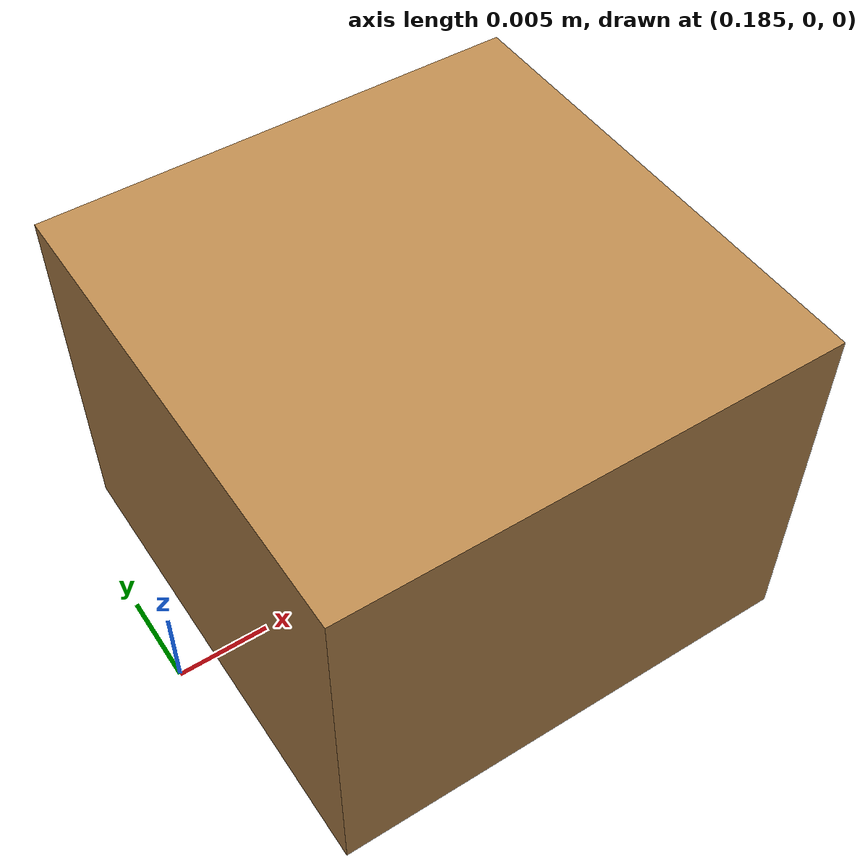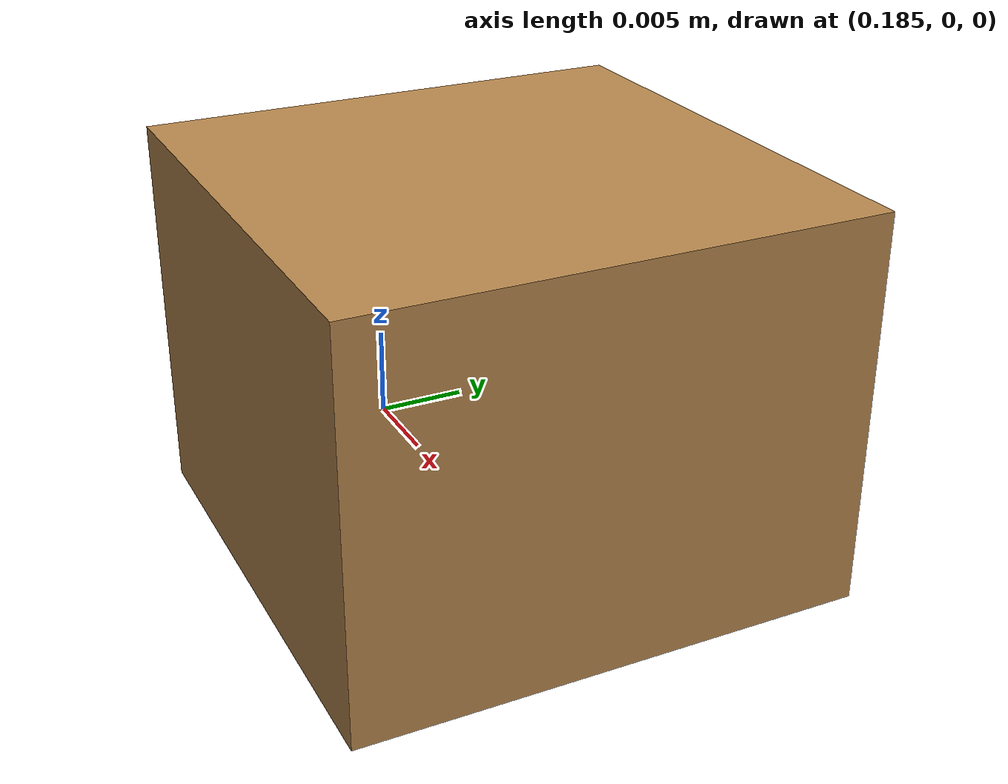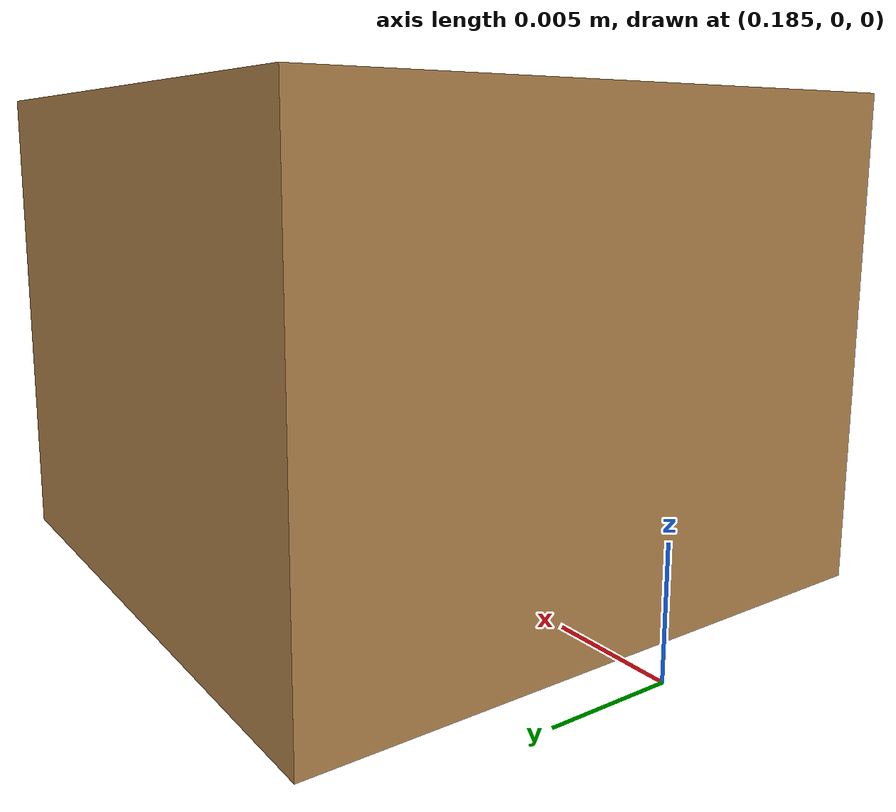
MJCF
<mujoco model="microduck_object_block">
    <worldbody>
        <body name="block" pos="0.2 0 0.010">
            <freejoint name="block_free"/>
            <inertial pos="0 0 0" mass="0.012" diaginertia="1.08e-6 1.08e-6 1.35e-6"/>
            <geom name="block_geom" type="box" size="0.013 0.013 0.010"
                  condim="4" friction="0.9 0.02 0.001" solref="0.01 1"
                  solimp="0.95 0.99 0.001 0.5 2" priority="2"
                  rgba="0.72 0.53 0.30 1"/>
        </body>
    </worldbody>
</mujoco>
